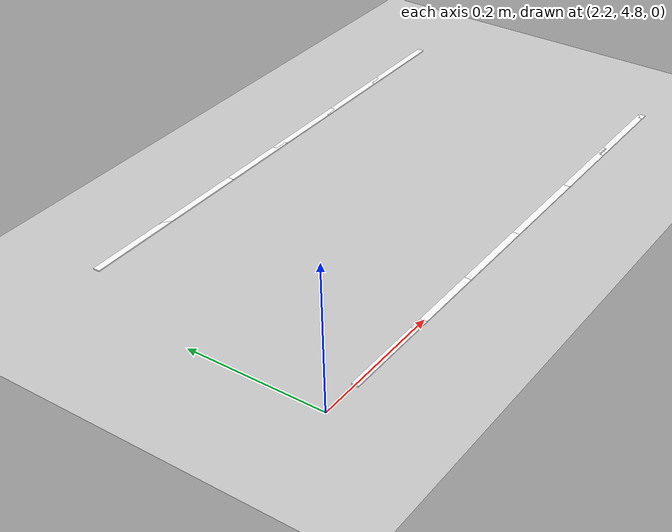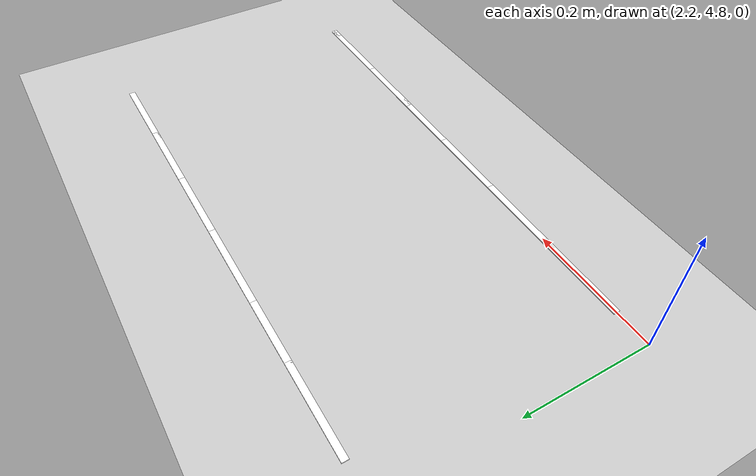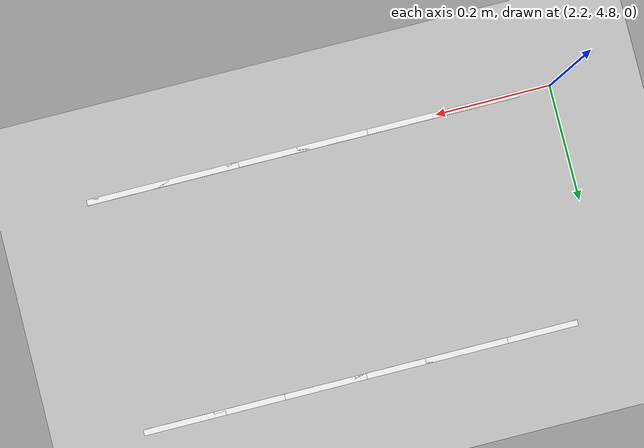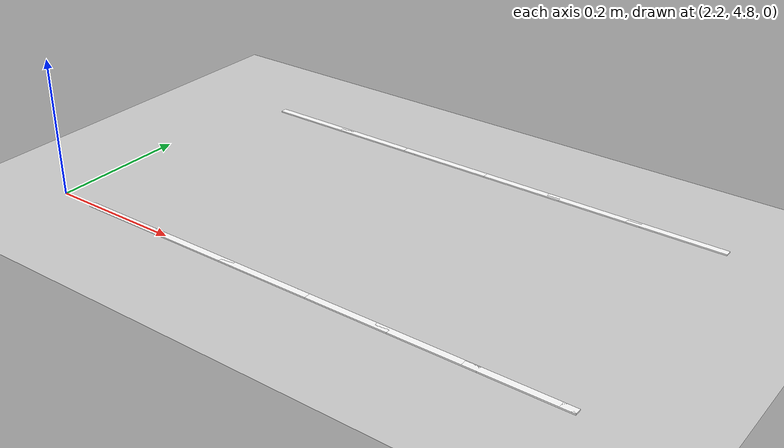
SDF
<sdf version="1.7">
 <world name="default">
  <model name="ground_plane">
   <static>1</static>
   <link name="link">
    <collision name="collision">
     <geometry><plane><normal>0 0 1</normal><size>100 100</size></plane></geometry>
     <surface>
      <contact><collide_bitmask>65535</collide_bitmask></contact>
      <friction><ode><mu>100</mu><mu2>50</mu2></ode></friction>
     </surface>
    </collision>
    <visual name="visual">
     <cast_shadows>0</cast_shadows>
     <geometry><plane><normal>0 0 1</normal><size>100 100</size></plane></geometry>
     <material>
      <script><uri>file://media/materials/scripts/gazebo.material</uri><name>Gazebo/Grey</name></script>
     </material>
    </visual>
   </link>
  </model>
  <model name="lane_line_right_199">
   <static>1</static>
   <link name="link">
    <pose>0 0 -0.004 0 -0 0</pose>
    <visual name="visual">
     <geometry><box><size>0.02 0.01 0.01</size></box></geometry>
     <material><ambient>1 1 1 1</ambient><diffuse>1 1 1 1</diffuse></material>
    </visual>
    <collision name="collision"><geometry><box><size>0.02 0.01 0.01</size></box></geometry></collision>
   </link>
   <pose>3 4.8 0 0 -0 0</pose>
  </model>
  <model name="lane_line_left_200">
   <static>1</static>
   <link name="link">
    <pose>0 0 -0.004 0 -0 0</pose>
    <visual name="visual">
     <geometry><box><size>0.1424 0.01 0.01</size></box></geometry>
     <material><ambient>1 1 1 1</ambient><diffuse>1 1 1 1</diffuse></material>
    </visual>
    <collision name="collision"><geometry><box><size>0.1424 0.01 0.01</size></box></geometry></collision>
   </link>
   <pose>2.93878 4.8 0 0 -0 3.14159</pose>
  </model>
  <model name="lane_line_right_200">
   <static>1</static>
   <link name="link">
    <pose>0 0 -0.004 0 -0 0</pose>
    <visual name="visual">
     <geometry><box><size>0.1424 0.01 0.01</size></box></geometry>
     <material><ambient>1 1 1 1</ambient><diffuse>1 1 1 1</diffuse></material>
    </visual>
    <collision name="collision"><geometry><box><size>0.1424 0.01 0.01</size></box></geometry></collision>
   </link>
   <pose>2.93878 5.2 0 0 -0 3.14159</pose>
  </model>
  <model name="lane_line_left_201">
   <static>1</static>
   <link name="link">
    <pose>0 0 -0.004 0 -0 0</pose>
    <visual name="visual">
     <geometry><box><size>0.1424 0.01 0.01</size></box></geometry>
     <material><ambient>1 1 1 1</ambient><diffuse>1 1 1 1</diffuse></material>
    </visual>
    <collision name="collision"><geometry><box><size>0.1424 0.01 0.01</size></box></geometry></collision>
   </link>
   <pose>2.81633 4.8 0 0 -0 3.14159</pose>
  </model>
  <model name="lane_line_right_201">
   <static>1</static>
   <link name="link">
    <pose>0 0 -0.004 0 -0 0</pose>
    <visual name="visual">
     <geometry><box><size>0.1424 0.01 0.01</size></box></geometry>
     <material><ambient>1 1 1 1</ambient><diffuse>1 1 1 1</diffuse></material>
    </visual>
    <collision name="collision"><geometry><box><size>0.1424 0.01 0.01</size></box></geometry></collision>
   </link>
   <pose>2.81633 5.2 0 0 -0 3.14159</pose>
  </model>
  <model name="lane_line_left_202">
   <static>1</static>
   <link name="link">
    <pose>0 0 -0.004 0 -0 0</pose>
    <visual name="visual">
     <geometry><box><size>0.1424 0.01 0.01</size></box></geometry>
     <material><ambient>1 1 1 1</ambient><diffuse>1 1 1 1</diffuse></material>
    </visual>
    <collision name="collision"><geometry><box><size>0.1424 0.01 0.01</size></box></geometry></collision>
   </link>
   <pose>2.69388 4.8 0 0 -0 3.14159</pose>
  </model>
  <model name="lane_line_right_202">
   <static>1</static>
   <link name="link">
    <pose>0 0 -0.004 0 -0 0</pose>
    <visual name="visual">
     <geometry><box><size>0.1424 0.01 0.01</size></box></geometry>
     <material><ambient>1 1 1 1</ambient><diffuse>1 1 1 1</diffuse></material>
    </visual>
    <collision name="collision"><geometry><box><size>0.1424 0.01 0.01</size></box></geometry></collision>
   </link>
   <pose>2.69388 5.2 0 0 -0 3.14159</pose>
  </model>
  <model name="lane_line_left_203">
   <static>1</static>
   <link name="link">
    <pose>0 0 -0.004 0 -0 0</pose>
    <visual name="visual">
     <geometry><box><size>0.1424 0.01 0.01</size></box></geometry>
     <material><ambient>1 1 1 1</ambient><diffuse>1 1 1 1</diffuse></material>
    </visual>
    <collision name="collision"><geometry><box><size>0.1424 0.01 0.01</size></box></geometry></collision>
   </link>
   <pose>2.57143 4.8 0 0 -0 3.14159</pose>
  </model>
  <model name="lane_line_right_203">
   <static>1</static>
   <link name="link">
    <pose>0 0 -0.004 0 -0 0</pose>
    <visual name="visual">
     <geometry><box><size>0.1424 0.01 0.01</size></box></geometry>
     <material><ambient>1 1 1 1</ambient><diffuse>1 1 1 1</diffuse></material>
    </visual>
    <collision name="collision"><geometry><box><size>0.1424 0.01 0.01</size></box></geometry></collision>
   </link>
   <pose>2.57143 5.2 0 0 -0 3.14159</pose>
  </model>
  <model name="lane_line_left_204">
   <static>1</static>
   <link name="link">
    <pose>0 0 -0.004 0 -0 0</pose>
    <visual name="visual">
     <geometry><box><size>0.1424 0.01 0.01</size></box></geometry>
     <material><ambient>1 1 1 1</ambient><diffuse>1 1 1 1</diffuse></material>
    </visual>
    <collision name="collision"><geometry><box><size>0.1424 0.01 0.01</size></box></geometry></collision>
   </link>
   <pose>2.44898 4.8 0 0 -0 3.14159</pose>
  </model>
  <model name="lane_line_right_204">
   <static>1</static>
   <link name="link">
    <pose>0 0 -0.004 0 -0 0</pose>
    <visual name="visual">
     <geometry><box><size>0.1424 0.01 0.01</size></box></geometry>
     <material><ambient>1 1 1 1</ambient><diffuse>1 1 1 1</diffuse></material>
    </visual>
    <collision name="collision"><geometry><box><size>0.1424 0.01 0.01</size></box></geometry></collision>
   </link>
   <pose>2.44898 5.2 0 0 -0 3.14159</pose>
  </model>
  <model name="lane_line_left_205">
   <static>1</static>
   <link name="link">
    <pose>0 0 -0.004 0 -0 0</pose>
    <visual name="visual">
     <geometry><box><size>0.1424 0.01 0.01</size></box></geometry>
     <material><ambient>1 1 1 1</ambient><diffuse>1 1 1 1</diffuse></material>
    </visual>
    <collision name="collision"><geometry><box><size>0.1424 0.01 0.01</size></box></geometry></collision>
   </link>
   <pose>2.32653 4.8 0 0 -0 3.14159</pose>
  </model>
  <model name="lane_line_right_205">
   <static>1</static>
   <link name="link">
    <pose>0 0 -0.004 0 -0 0</pose>
    <visual name="visual">
     <geometry><box><size>0.1424 0.01 0.01</size></box></geometry>
     <material><ambient>1 1 1 1</ambient><diffuse>1 1 1 1</diffuse></material>
    </visual>
    <collision name="collision"><geometry><box><size>0.1424 0.01 0.01</size></box></geometry></collision>
   </link>
   <pose>2.32653 5.2 0 0 -0 3.14159</pose>
  </model>
 </world>
</sdf>
